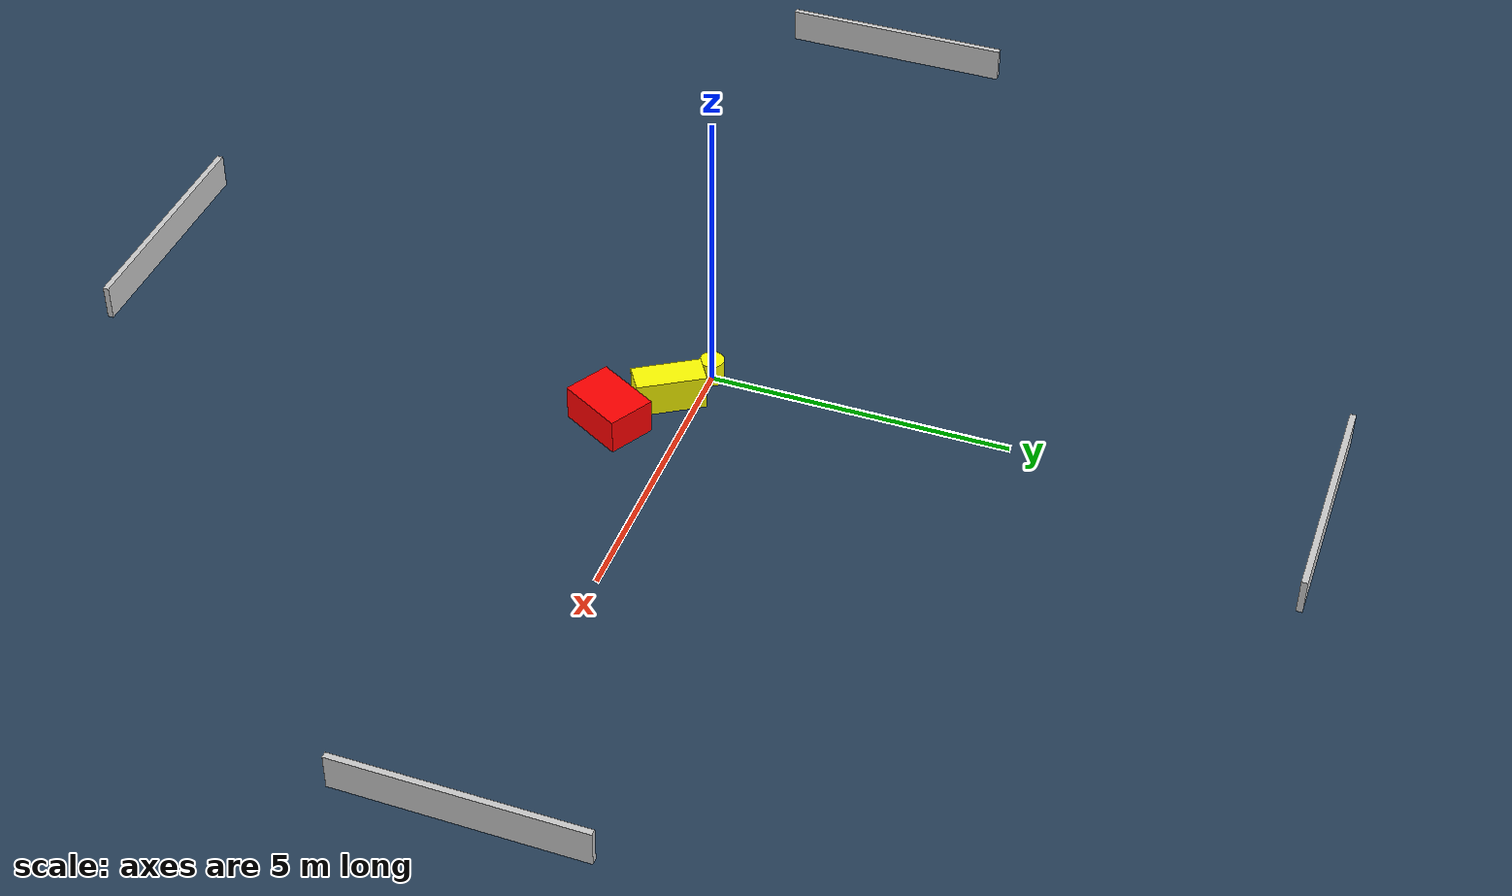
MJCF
<?xml version="1.0" ?>
<mujoco model="generated_environment">
  <option timestep="0.01" integrator="RK4" cone="elliptic"/>
  <default>
    <geom density="1"/>
  </default>
  <asset>
    <texture builtin="gradient" height="3072" name="skybox" rgb1="0.3 0.5 0.7" rgb2="0 0 0" type="skybox" width="512"/>
    <texture builtin="checker" height="300" name="groundplane" rgb1="0.2 0.3 0.4" rgb2="0.1 0.2 0.3" type="2d" width="300"/>
    <material name="groundplane" reflectance="0.2" texrepeat="5 5" texture="groundplane"/>
  </asset>
  <worldbody>
    <light dir="0 0 -1" directional="true" pos="0 0 1.5"/>
    <geom condim="3" friction="0.5 0.005 0.001" material="groundplane" name="floor" pos="0 0 0" size="0 0 0.05" type="plane"/>
    <body name="walls">
      <geom name="wall_1" condim="4" pos="-10.0 0.0 0.3" rgba="0.800000011920929 0.800000011920929 0.800000011920929 1.0" size="0.05 2.0 0.3" type="box"/>
      <geom name="wall_2" condim="4" pos="10.0 0.0 0.3" rgba="0.800000011920929 0.800000011920929 0.800000011920929 1.0" size="0.05 2.0 0.3" type="box"/>
      <geom name="wall_3" condim="4" pos="0.0 -10.0 0.3" rgba="0.800000011920929 0.800000011920929 0.800000011920929 1.0" size="2.0 0.05 0.3" type="box"/>
      <geom name="wall_4" condim="4" pos="0.0 10.0 0.3" rgba="0.800000011920929 0.800000011920929 0.800000011920929 1.0" size="2.0 0.05 0.3" type="box"/>
    </body>
    <body name="robot">
      <joint name="joint_x" type="slide" pos="0 0 0" axis="1 0 0"/>
      <joint name="joint_y" type="slide" pos="0 0 0" axis="0 1 0"/>
      <geom name="robot" type="cylinder" pos="0.0 0.0 0.2" size="0.2 0.2 0.0" mass="5.0" friction="1.0 0.005 0.0001" condim="4" rgba="1.0 1.0 0.0 1.0"/>
    </body>
    <body name="obstacle_1_movable">
      <geom name="obstacle_1_movable" condim="4" pos="0.791062926719584 -0.45355953537876076 0.3" euler="0 0 32.36184521942894" friction="0.0 0.005 0.001" rgba="1.0 1.0 0.0 1.0" size="0.2474218709749761 0.573636677083753 0.3" type="box" mass="0.1"/>
      <joint type="free"/>
    </body>
    <body name="obstacle_2_static">
      <geom name="obstacle_2_static" condim="4" pos="1.6095924806099169 -1.1532055002428296 0.3" euler="0 0 150.99350054624196" friction="0.0 0.005 0.001" rgba="1.0 0.0 0.0 1.0" size="0.4041472128247726 0.567512166010474 0.3" type="box"/>
    </body>
  </worldbody>
  <actuator>
    <motor name="actuator_x" joint="joint_x" gear="1" ctrlrange="-1 1"/>
    <motor name="actuator_y" joint="joint_y" gear="1" ctrlrange="-1 1"/>
  </actuator>
</mujoco>
